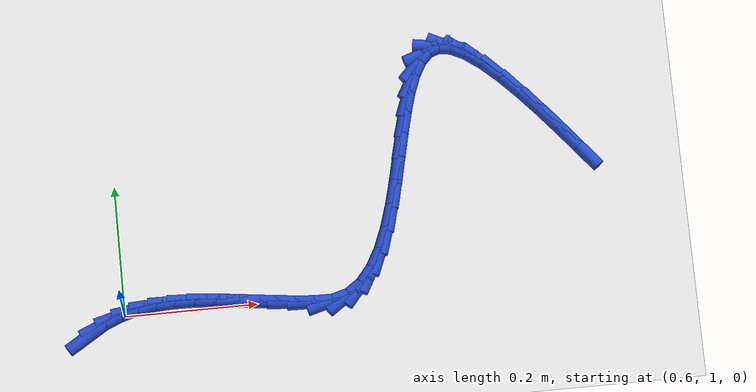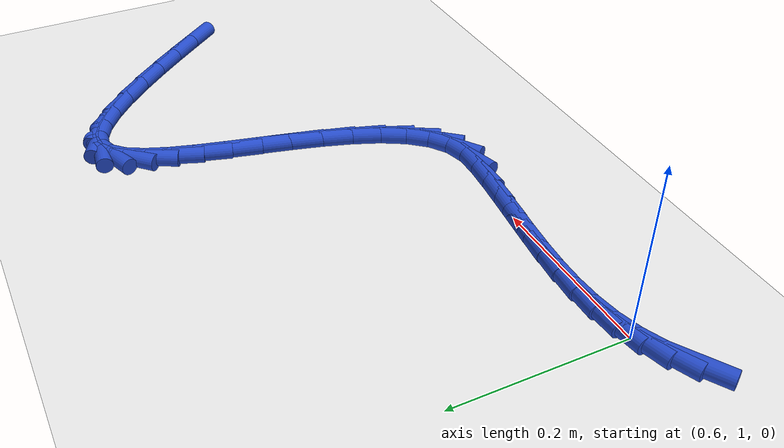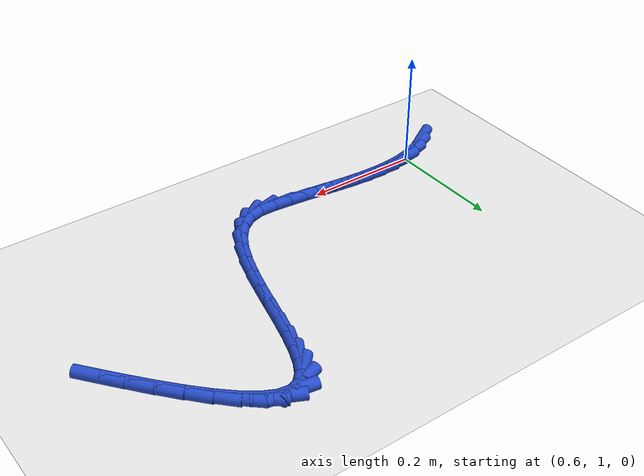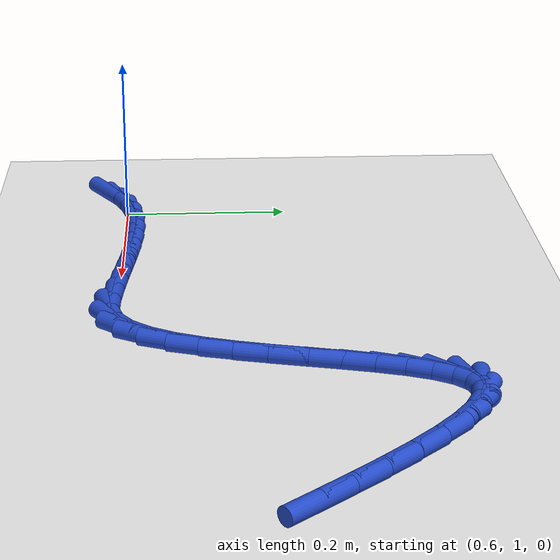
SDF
<sdf version="1.6">
 <world name="default">
  <model name="ground_plane">
   <static>1</static>
   <link name="link">
    <collision name="collision">
     <geometry><plane><normal>0 0 1</normal><size>100 100</size></plane></geometry>
     <surface><friction><ode><mu>100</mu><mu2>50</mu2></ode></friction></surface>
    </collision>
    <visual name="visual">
     <cast_shadows>0</cast_shadows>
     <geometry><plane><normal>0 0 1</normal><size>100 100</size></plane></geometry>
     <material>
      <script><uri>file://media/materials/scripts/gazebo.material</uri><name>Gazebo/WhiteGlow</name></script>
     </material>
    </visual>
   </link>
  </model>
  <model name="line">
   <link name="link_40">
    <pose>0.5448099960378696 0.9749631184401399 0.01 0 1.57 0.5558762434495466</pose>
    <collision name="collision">
     <geometry><cylinder><radius>0.01</radius><length>0.08</length></cylinder></geometry>
    </collision>
    <visual name="visual">
     <material>
      <script><name>Gazebo/Blue</name><uri>file://media/materials/scripts/gazebo.material</uri></script>
     </material>
     <geometry><cylinder><radius>0.01</radius><length>0.08</length></cylinder></geometry>
    </visual>
   </link>
   <link name="link_41">
    <pose>0.5680656244115422 0.9894099718206363 0.01 0 1.57 0.40118058593164074</pose>
    <collision name="collision">
     <geometry><cylinder><radius>0.01</radius><length>0.08</length></cylinder></geometry>
    </collision>
    <visual name="visual">
     <material>
      <script><name>Gazebo/Blue</name><uri>file://media/materials/scripts/gazebo.material</uri></script>
     </material>
     <geometry><cylinder><radius>0.01</radius><length>0.08</length></cylinder></geometry>
    </visual>
   </link>
   <link name="link_42">
    <pose>0.5928835840646357 0.9999373913103434 0.01 0 1.57 0.2630922294704013</pose>
    <collision name="collision">
     <geometry><cylinder><radius>0.01</radius><length>0.08</length></cylinder></geometry>
    </collision>
    <visual name="visual">
     <material>
      <script><name>Gazebo/Blue</name><uri>file://media/materials/scripts/gazebo.material</uri></script>
     </material>
     <geometry><cylinder><radius>0.01</radius><length>0.08</length></cylinder></geometry>
    </visual>
   </link>
   <link name="link_43">
    <pose>0.6190728574797417 1.0069910880891046 0.01 0 1.57 0.14731021760152851</pose>
    <collision name="collision">
     <geometry><cylinder><radius>0.01</radius><length>0.08</length></cylinder></geometry>
    </collision>
    <visual name="visual">
     <material>
      <script><name>Gazebo/Blue</name><uri>file://media/materials/scripts/gazebo.material</uri></script>
     </material>
     <geometry><cylinder><radius>0.01</radius><length>0.08</length></cylinder></geometry>
    </visual>
   </link>
   <link name="link_44">
    <pose>0.6464349141021115 1.011051209799362 0.01 0 1.57 0.05452936577938574</pose>
    <collision name="collision">
     <geometry><cylinder><radius>0.01</radius><length>0.08</length></cylinder></geometry>
    </collision>
    <visual name="visual">
     <material>
      <script><name>Gazebo/Blue</name><uri>file://media/materials/scripts/gazebo.material</uri></script>
     </material>
     <geometry><cylinder><radius>0.01</radius><length>0.08</length></cylinder></geometry>
    </visual>
   </link>
   <link name="link_45">
    <pose>0.6747712233769956 1.012597904083557 0.01 0 1.57 -0.01671268449121818</pose>
    <collision name="collision">
     <geometry><cylinder><radius>0.01</radius><length>0.08</length></cylinder></geometry>
    </collision>
    <visual name="visual">
     <material>
      <script><name>Gazebo/Blue</name><uri>file://media/materials/scripts/gazebo.material</uri></script>
     </material>
     <geometry><cylinder><radius>0.01</radius><length>0.08</length></cylinder></geometry>
    </visual>
   </link>
   <link name="link_46">
    <pose>0.703883254749645 1.012111318584132 0.01 0 1.57 -0.06859450465147793</pose>
    <collision name="collision">
     <geometry><cylinder><radius>0.01</radius><length>0.08</length></cylinder></geometry>
    </collision>
    <visual name="visual">
     <material>
      <script><name>Gazebo/Blue</name><uri>file://media/materials/scripts/gazebo.material</uri></script>
     </material>
     <geometry><cylinder><radius>0.01</radius><length>0.08</length></cylinder></geometry>
    </visual>
   </link>
   <link name="link_47">
    <pose>0.7335724776653103 1.010071600943527 0.01 0 1.57 -0.10315503395575393</pose>
    <collision name="collision">
     <geometry><cylinder><radius>0.01</radius><length>0.08</length></cylinder></geometry>
    </collision>
    <visual name="visual">
     <material>
      <script><name>Gazebo/Blue</name><uri>file://media/materials/scripts/gazebo.material</uri></script>
     </material>
     <geometry><cylinder><radius>0.01</radius><length>0.08</length></cylinder></geometry>
    </visual>
   </link>
   <link name="link_48">
    <pose>0.7636403615692429 1.0069588988041849 0.01 0 1.57 -0.12189782490905618</pose>
    <collision name="collision">
     <geometry><cylinder><radius>0.01</radius><length>0.08</length></cylinder></geometry>
    </collision>
    <visual name="visual">
     <material>
      <script><name>Gazebo/Blue</name><uri>file://media/materials/scripts/gazebo.material</uri></script>
     </material>
     <geometry><cylinder><radius>0.01</radius><length>0.08</length></cylinder></geometry>
    </visual>
   </link>
   <link name="link_49">
    <pose>0.7938883759066931 1.003253359808547 0.01 0 1.57 -0.12564221077426754</pose>
    <collision name="collision">
     <geometry><cylinder><radius>0.01</radius><length>0.08</length></cylinder></geometry>
    </collision>
    <visual name="visual">
     <material>
      <script><name>Gazebo/Blue</name><uri>file://media/materials/scripts/gazebo.material</uri></script>
     </material>
     <geometry><cylinder><radius>0.01</radius><length>0.08</length></cylinder></geometry>
    </visual>
   </link>
   <link name="link_50">
    <pose>0.8241179901229124 0.9994351315990544 0.01 0 1.57 -0.11447437510522215</pose>
    <collision name="collision">
     <geometry><cylinder><radius>0.01</radius><length>0.08</length></cylinder></geometry>
    </collision>
    <visual name="visual">
     <material>
      <script><name>Gazebo/Blue</name><uri>file://media/materials/scripts/gazebo.material</uri></script>
     </material>
     <geometry><cylinder><radius>0.01</radius><length>0.08</length></cylinder></geometry>
    </visual>
   </link>
   <link name="link_51">
    <pose>0.8541306736631509 0.9959843618181494 0.01 0 1.57 -0.08772722702425166</pose>
    <collision name="collision">
     <geometry><cylinder><radius>0.01</radius><length>0.08</length></cylinder></geometry>
    </collision>
    <visual name="visual">
     <material>
      <script><name>Gazebo/Blue</name><uri>file://media/materials/scripts/gazebo.material</uri></script>
     </material>
     <geometry><cylinder><radius>0.01</radius><length>0.08</length></cylinder></geometry>
    </visual>
   </link>
   <link name="link_52">
    <pose>0.8837278959726601 0.993381198108273 0.01 0 1.57 -0.01701527044721133</pose>
    <collision name="collision">
     <geometry><cylinder><radius>0.01</radius><length>0.08</length></cylinder></geometry>
    </collision>
    <visual name="visual">
     <material>
      <script><name>Gazebo/Blue</name><uri>file://media/materials/scripts/gazebo.material</uri></script>
     </material>
     <geometry><cylinder><radius>0.01</radius><length>0.08</length></cylinder></geometry>
    </visual>
   </link>
   <link name="link_53">
    <pose>0.9123358119783457 0.992894379698469 0.01 0 1.57 0.2726886236249422</pose>
    <collision name="collision">
     <geometry><cylinder><radius>0.01</radius><length>0.08</length></cylinder></geometry>
    </collision>
    <visual name="visual">
     <material>
      <script><name>Gazebo/Blue</name><uri>file://media/materials/scripts/gazebo.material</uri></script>
     </material>
     <geometry><cylinder><radius>0.01</radius><length>0.08</length></cylinder></geometry>
    </visual>
   </link>
   <link name="link_54">
    <pose>0.9373992751168906 0.999903498904146 0.01 0 1.57 0.6130740387735507</pose>
    <collision name="collision">
     <geometry><cylinder><radius>0.01</radius><length>0.08</length></cylinder></geometry>
    </collision>
    <visual name="visual">
     <material>
      <script><name>Gazebo/Blue</name><uri>file://media/materials/scripts/gazebo.material</uri></script>
     </material>
     <geometry><cylinder><radius>0.01</radius><length>0.08</length></cylinder></geometry>
    </visual>
   </link>
   <link name="link_55">
    <pose>0.9586350325758902 1.0148429476561867 0.01 0 1.57 0.8795695974295934</pose>
    <collision name="collision">
     <geometry><cylinder><radius>0.01</radius><length>0.08</length></cylinder></geometry>
    </collision>
    <visual name="visual">
     <material>
      <script><name>Gazebo/Blue</name><uri>file://media/materials/scripts/gazebo.material</uri></script>
     </material>
     <geometry><cylinder><radius>0.01</radius><length>0.08</length></cylinder></geometry>
    </visual>
   </link>
   <link name="link_56">
    <pose>0.976536888476006 1.0364792106758454 0.01 0 1.57 1.0635160704220663</pose>
    <collision name="collision">
     <geometry><cylinder><radius>0.01</radius><length>0.08</length></cylinder></geometry>
    </collision>
    <visual name="visual">
     <material>
      <script><name>Gazebo/Blue</name><uri>file://media/materials/scripts/gazebo.material</uri></script>
     </material>
     <geometry><cylinder><radius>0.01</radius><length>0.08</length></cylinder></geometry>
    </visual>
   </link>
   <link name="link_57">
    <pose>0.9915986469378985 1.063578772684376 0.01 0 1.57 1.185244704178459</pose>
    <collision name="collision">
     <geometry><cylinder><radius>0.01</radius><length>0.08</length></cylinder></geometry>
    </collision>
    <visual name="visual">
     <material>
      <script><name>Gazebo/Blue</name><uri>file://media/materials/scripts/gazebo.material</uri></script>
     </material>
     <geometry><cylinder><radius>0.01</radius><length>0.08</length></cylinder></geometry>
    </visual>
   </link>
   <link name="link_58">
    <pose>1.0043141120822288 1.0949081184030323 0.01 0 1.57 1.2643001150706743</pose>
    <collision name="collision">
     <geometry><cylinder><radius>0.01</radius><length>0.08</length></cylinder></geometry>
    </collision>
    <visual name="visual">
     <material>
      <script><name>Gazebo/Blue</name><uri>file://media/materials/scripts/gazebo.material</uri></script>
     </material>
     <geometry><cylinder><radius>0.01</radius><length>0.08</length></cylinder></geometry>
    </visual>
   </link>
   <link name="link_59">
    <pose>1.0151770880296582 1.1292337325530688 0.01 0 1.57 1.313282090881305</pose>
    <collision name="collision">
     <geometry><cylinder><radius>0.01</radius><length>0.08</length></cylinder></geometry>
    </collision>
    <visual name="visual">
     <material>
      <script><name>Gazebo/Blue</name><uri>file://media/materials/scripts/gazebo.material</uri></script>
     </material>
     <geometry><cylinder><radius>0.01</radius><length>0.08</length></cylinder></geometry>
    </visual>
   </link>
   <link name="link_60">
    <pose>1.0246813789008478 1.1653220998557392 0.01 0 1.57 1.3390975725473584</pose>
    <collision name="collision">
     <geometry><cylinder><radius>0.01</radius><length>0.08</length></cylinder></geometry>
    </collision>
    <visual name="visual">
     <material>
      <script><name>Gazebo/Blue</name><uri>file://media/materials/scripts/gazebo.material</uri></script>
     </material>
     <geometry><cylinder><radius>0.01</radius><length>0.08</length></cylinder></geometry>
    </visual>
   </link>
   <link name="link_61">
    <pose>1.0333207888164588 1.2019397050322986 0.01 0 1.57 1.3445093037787497</pose>
    <collision name="collision">
     <geometry><cylinder><radius>0.01</radius><length>0.08</length></cylinder></geometry>
    </collision>
    <visual name="visual">
     <material>
      <script><name>Gazebo/Blue</name><uri>file://media/materials/scripts/gazebo.material</uri></script>
     </material>
     <geometry><cylinder><radius>0.01</radius><length>0.08</length></cylinder></geometry>
    </visual>
   </link>
   <link name="link_62">
    <pose>1.0415891218971518 1.2378530328039998 0.01 0 1.57 1.328668057909878</pose>
    <collision name="collision">
     <geometry><cylinder><radius>0.01</radius><length>0.08</length></cylinder></geometry>
    </collision>
    <visual name="visual">
     <material>
      <script><name>Gazebo/Blue</name><uri>file://media/materials/scripts/gazebo.material</uri></script>
     </material>
     <geometry><cylinder><radius>0.01</radius><length>0.08</length></cylinder></geometry>
    </visual>
   </link>
   <link name="link_63">
    <pose>1.0499801822635881 1.2718285678920977 0.01 0 1.57 1.2863134789850907</pose>
    <collision name="collision">
     <geometry><cylinder><radius>0.01</radius><length>0.08</length></cylinder></geometry>
    </collision>
    <visual name="visual">
     <material>
      <script><name>Gazebo/Blue</name><uri>file://media/materials/scripts/gazebo.material</uri></script>
     </material>
     <geometry><cylinder><radius>0.01</radius><length>0.08</length></cylinder></geometry>
    </visual>
   </link>
   <link name="link_64">
    <pose>1.058987774036429 1.3026327950178458 0.01 0 1.57 1.2048007196171158</pose>
    <collision name="collision">
     <geometry><cylinder><radius>0.01</radius><length>0.08</length></cylinder></geometry>
    </collision>
    <visual name="visual">
     <material>
      <script><name>Gazebo/Blue</name><uri>file://media/materials/scripts/gazebo.material</uri></script>
     </material>
     <geometry><cylinder><radius>0.01</radius><length>0.08</length></cylinder></geometry>
    </visual>
   </link>
   <link name="link_65">
    <pose>1.0691057013363356 1.329032198902499 0.01 0 1.57 1.0567995523106515</pose>
    <collision name="collision">
     <geometry><cylinder><radius>0.01</radius><length>0.08</length></cylinder></geometry>
    </collision>
    <visual name="visual">
     <material>
      <script><name>Gazebo/Blue</name><uri>file://media/materials/scripts/gazebo.material</uri></script>
     </material>
     <geometry><cylinder><radius>0.01</radius><length>0.08</length></cylinder></geometry>
    </visual>
   </link>
   <link name="link_66">
    <pose>1.0808277682839686 1.3497932642673105 0.01 0 1.57 0.7878955523761453</pose>
    <collision name="collision">
     <geometry><cylinder><radius>0.01</radius><length>0.08</length></cylinder></geometry>
    </collision>
    <visual name="visual">
     <material>
      <script><name>Gazebo/Blue</name><uri>file://media/materials/scripts/gazebo.material</uri></script>
     </material>
     <geometry><cylinder><radius>0.01</radius><length>0.08</length></cylinder></geometry>
    </visual>
   </link>
   <link name="link_67">
    <pose>1.094647778999989 1.3636824758335344 0.01 0 1.57 0.3389187498005113</pose>
    <collision name="collision">
     <geometry><cylinder><radius>0.01</radius><length>0.08</length></cylinder></geometry>
    </collision>
    <visual name="visual">
     <material>
      <script><name>Gazebo/Blue</name><uri>file://media/materials/scripts/gazebo.material</uri></script>
     </material>
     <geometry><cylinder><radius>0.01</radius><length>0.08</length></cylinder></geometry>
    </visual>
   </link>
   <link name="link_68">
    <pose>1.1110589649936873 1.3694677601815661 0.01 0 1.57 -0.15165423664632643</pose>
    <collision name="collision">
     <geometry><cylinder><radius>0.01</radius><length>0.08</length></cylinder></geometry>
    </collision>
    <visual name="visual">
     <material>
      <script><name>Gazebo/Blue</name><uri>file://media/materials/scripts/gazebo.material</uri></script>
     </material>
     <geometry><cylinder><radius>0.01</radius><length>0.08</length></cylinder></geometry>
    </visual>
   </link>
   <link name="link_69">
    <pose>1.1303130361080307 1.3665252054472756 0.01 0 1.57 -0.459174871698221</pose>
    <collision name="collision">
     <geometry><cylinder><radius>0.01</radius><length>0.08</length></cylinder></geometry>
    </collision>
    <visual name="visual">
     <material>
      <script><name>Gazebo/Blue</name><uri>file://media/materials/scripts/gazebo.material</uri></script>
     </material>
     <geometry><cylinder><radius>0.01</radius><length>0.08</length></cylinder></geometry>
    </visual>
   </link>
   <link name="link_70">
    <pose>1.1520466438390968 1.3557796421491504 0.01 0 1.57 -0.6316998048241882</pose>
    <collision name="collision">
     <geometry><cylinder><radius>0.01</radius><length>0.08</length></cylinder></geometry>
    </collision>
    <visual name="visual">
     <material>
      <script><name>Gazebo/Blue</name><uri>file://media/materials/scripts/gazebo.material</uri></script>
     </material>
     <geometry><cylinder><radius>0.01</radius><length>0.08</length></cylinder></geometry>
    </visual>
   </link>
   <link name="link_71">
    <pose>1.1757999645843107 1.3383988290984274 0.01 0 1.57 -0.7342627828120555</pose>
    <collision name="collision">
     <geometry><cylinder><radius>0.01</radius><length>0.08</length></cylinder></geometry>
    </collision>
    <visual name="visual">
     <material>
      <script><name>Gazebo/Blue</name><uri>file://media/materials/scripts/gazebo.material</uri></script>
     </material>
     <geometry><cylinder><radius>0.01</radius><length>0.08</length></cylinder></geometry>
    </visual>
   </link>
   <link name="link_72">
    <pose>1.201113174741095 1.315550525106345 0.01 0 1.57 -0.7991154164352366</pose>
    <collision name="collision">
     <geometry><cylinder><radius>0.01</radius><length>0.08</length></cylinder></geometry>
    </collision>
    <visual name="visual">
     <material>
      <script><name>Gazebo/Blue</name><uri>file://media/materials/scripts/gazebo.material</uri></script>
     </material>
     <geometry><cylinder><radius>0.01</radius><length>0.08</length></cylinder></geometry>
    </visual>
   </link>
   <link name="link_73">
    <pose>1.2275264507068744 1.2884024889841414 0.01 0 1.57 -0.8416146879310283</pose>
    <collision name="collision">
     <geometry><cylinder><radius>0.01</radius><length>0.08</length></cylinder></geometry>
    </collision>
    <visual name="visual">
     <material>
      <script><name>Gazebo/Blue</name><uri>file://media/materials/scripts/gazebo.material</uri></script>
     </material>
     <geometry><cylinder><radius>0.01</radius><length>0.08</length></cylinder></geometry>
    </visual>
   </link>
   <link name="link_74">
    <pose>1.2545799688790722 1.2581224795430546 0.01 0 1.57 -0.8694371855828077</pose>
    <collision name="collision">
     <geometry><cylinder><radius>0.01</radius><length>0.08</length></cylinder></geometry>
    </collision>
    <visual name="visual">
     <material>
      <script><name>Gazebo/Blue</name><uri>file://media/materials/scripts/gazebo.material</uri></script>
     </material>
     <geometry><cylinder><radius>0.01</radius><length>0.08</length></cylinder></geometry>
    </visual>
   </link>
   <link name="link_75">
    <pose>1.2818139056551134 1.2258782555943233 0.01 0 1.57 -0.8864962085855524</pose>
    <collision name="collision">
     <geometry><cylinder><radius>0.01</radius><length>0.08</length></cylinder></geometry>
    </collision>
    <visual name="visual">
     <material>
      <script><name>Gazebo/Blue</name><uri>file://media/materials/scripts/gazebo.material</uri></script>
     </material>
     <geometry><cylinder><radius>0.01</radius><length>0.08</length></cylinder></geometry>
    </visual>
   </link>
   <link name="link_76">
    <pose>1.3087684374324198 1.1928375759491847 0.01 0 1.57 -0.8945676984376993</pose>
    <collision name="collision">
     <geometry><cylinder><radius>0.01</radius><length>0.08</length></cylinder></geometry>
    </collision>
    <visual name="visual">
     <material>
      <script><name>Gazebo/Blue</name><uri>file://media/materials/scripts/gazebo.material</uri></script>
     </material>
     <geometry><cylinder><radius>0.01</radius><length>0.08</length></cylinder></geometry>
    </visual>
   </link>
  </model>
 </world>
</sdf>
